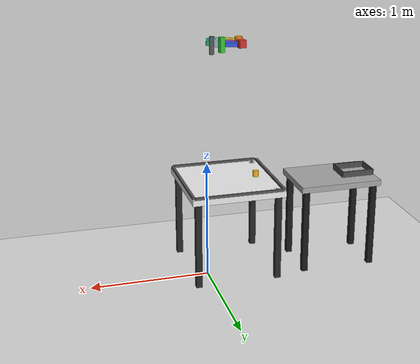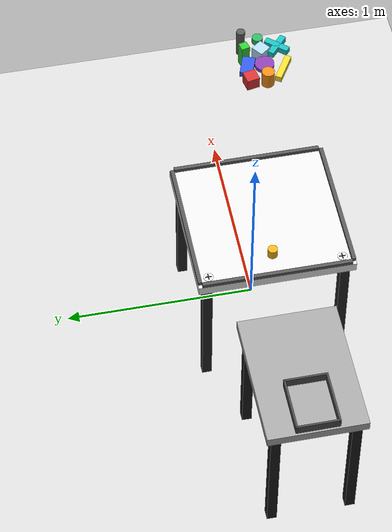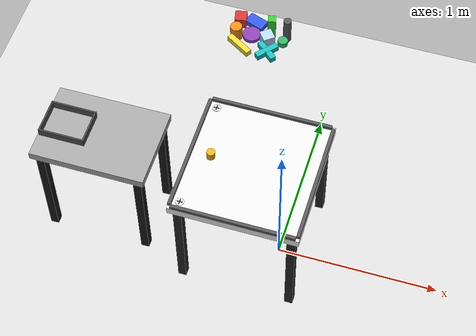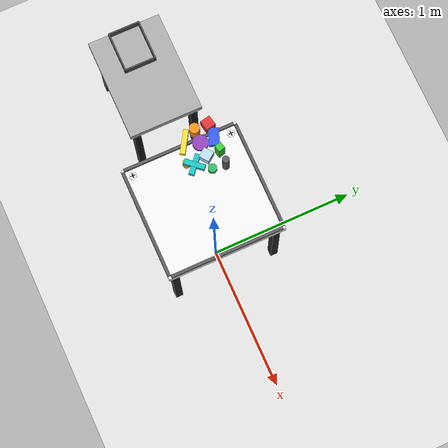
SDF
<sdf version="1.10">
 <world name="ur5_mesa_objetos">
  <plugin filename="gz-sim-physics-system" name="gz::sim::systems::Physics"/>
  <plugin filename="gz-sim-user-commands-system" name="gz::sim::systems::UserCommands"/>
  <plugin filename="gz-sim-scene-broadcaster-system" name="gz::sim::systems::SceneBroadcaster"/>
  <plugin filename="gz-sim-contact-system" name="gz::sim::systems::Contact"/>
  <plugin filename="gz-sim-sensors-system" name="gz::sim::systems::Sensors">
   <render_engine>ogre</render_engine>
  </plugin>
  <gravity>0 0 -9.81</gravity>
  <scene>
   <ambient>0.6 0.6 0.6 1</ambient>
   <background>0.95 0.95 0.95 1</background>
   <shadows>true</shadows>
  </scene>
  <physics name="ode_physics" type="ignored">
   <max_step_size>0.001</max_step_size>
   <real_time_update_rate>1000</real_time_update_rate>
   <dart><collision_detector>bullet</collision_detector></dart>
  </physics>
  <light name="sun_world" type="directional">
   <pose>0 0 10 0 0 0</pose>
   <diffuse>1 1 1 1</diffuse>
   <specular>0.1 0.1 0.1 1</specular>
   <direction>-0.5 0.5 -1</direction>
  </light>
  <model name="ground_plane">
   <static>true</static>
   <link name="link">
    <collision name="collision">
     <geometry><plane><normal>0 0 1</normal><size>100 100</size></plane></geometry>
    </collision>
    <visual name="visual">
     <geometry><plane><normal>0 0 1</normal><size>100 100</size></plane></geometry>
     <material><diffuse>0.85 0.85 0.85 1</diffuse></material>
    </visual>
   </link>
   <plugin filename="gz-sim-pose-publisher-system" name="gz::sim::systems::PosePublisher">
    <publish_pose>true</publish_pose>
    <publish_link_pose>true</publish_link_pose>
    <publish_visual_pose>false</publish_visual_pose>
    <publish_collision_pose>false</publish_collision_pose>
    <static_publisher>false</static_publisher>
   </plugin>
  </model>
  <model name="mesa_pro">
   <static>true</static>
   <pose>-0.17 0 0.075 0 0 0</pose>
   <link name="link">
    <collision name="tablero_collision">
     <pose>0 0 0.75 0 0 0</pose>
     <geometry><box><size>0.768 0.80 0.05</size></box></geometry>
     <surface><contact><collide_bitmask>0x01</collide_bitmask></contact></surface>
    </collision>
    <visual name="tablero_visual">
     <pose>0 0 0.75 0 0 0</pose>
     <geometry><box><size>0.768 0.80 0.05</size></box></geometry>
     <material><diffuse>0.92 0.92 0.92 1</diffuse></material>
    </visual>
    <collision name="wall_far_x_pos_c">
     <pose>0.374 0 0.785 0 0 0</pose>
     <geometry><box><size>0.02 0.76 0.02</size></box></geometry>
     <surface><contact><collide_bitmask>0x01</collide_bitmask></contact></surface>
    </collision>
    <visual name="wall_far_x_pos_v">
     <pose>0.374 0 0.785 0 0 0</pose>
     <geometry><box><size>0.02 0.76 0.02</size></box></geometry>
     <material><diffuse>0.35 0.35 0.35 1</diffuse></material>
    </visual>
    <collision name="wall_near_x_neg_c">
     <pose>-0.374 0 0.785 0 0 0</pose>
     <geometry><box><size>0.02 0.76 0.02</size></box></geometry>
     <surface><contact><collide_bitmask>0x01</collide_bitmask></contact></surface>
    </collision>
    <visual name="wall_near_x_neg_v">
     <pose>-0.374 0 0.785 0 0 0</pose>
     <geometry><box><size>0.02 0.76 0.02</size></box></geometry>
     <material><diffuse>0.35 0.35 0.35 1</diffuse></material>
    </visual>
    <collision name="wall_north_c">
     <pose>0 0.39 0.785 0 0 0</pose>
     <geometry><box><size>0.728 0.02 0.02</size></box></geometry>
     <surface><contact><collide_bitmask>0x01</collide_bitmask></contact></surface>
    </collision>
    <visual name="wall_north_v">
     <pose>0 0.39 0.785 0 0 0</pose>
     <geometry><box><size>0.728 0.02 0.02</size></box></geometry>
     <material><diffuse>0.35 0.35 0.35 1</diffuse></material>
    </visual>
    <collision name="wall_south_c">
     <pose>0 -0.39 0.785 0 0 0</pose>
     <geometry><box><size>0.728 0.02 0.02</size></box></geometry>
     <surface><contact><collide_bitmask>0x01</collide_bitmask></contact></surface>
    </collision>
    <visual name="wall_south_v">
     <pose>0 -0.39 0.785 0 0 0</pose>
     <geometry><box><size>0.728 0.02 0.02</size></box></geometry>
     <material><diffuse>0.35 0.35 0.35 1</diffuse></material>
    </visual>
    <visual name="test_marker_front_left_disk_v">
     <pose>-0.324 0.340 0.776 0 0 0</pose>
     <geometry><cylinder><radius>0.025</radius><length>0.003</length></cylinder></geometry>
     <material>
      <ambient>0.96 0.96 0.96 1</ambient>
      <diffuse>0.96 0.96 0.96 1</diffuse>
      <emissive>0.05 0.05 0.05 1</emissive>
     </material>
    </visual>
    <visual name="test_marker_front_left_cross_h_v">
     <pose>-0.324 0.340 0.778 0 0 0</pose>
     <geometry><box><size>0.034 0.005 0.002</size></box></geometry>
     <material><ambient>0.12 0.12 0.12 1</ambient><diffuse>0.12 0.12 0.12 1</diffuse></material>
    </visual>
    <visual name="test_marker_front_left_cross_v_v">
     <pose>-0.324 0.340 0.778 0 0 0</pose>
     <geometry><box><size>0.005 0.034 0.002</size></box></geometry>
     <material><ambient>0.12 0.12 0.12 1</ambient><diffuse>0.12 0.12 0.12 1</diffuse></material>
    </visual>
    <visual name="test_marker_front_right_disk_v">
     <pose>-0.324 -0.340 0.776 0 0 0</pose>
     <geometry><cylinder><radius>0.025</radius><length>0.003</length></cylinder></geometry>
     <material>
      <ambient>0.96 0.96 0.96 1</ambient>
      <diffuse>0.96 0.96 0.96 1</diffuse>
      <emissive>0.05 0.05 0.05 1</emissive>
     </material>
    </visual>
    <visual name="test_marker_front_right_cross_h_v">
     <pose>-0.324 -0.340 0.778 0 0 0</pose>
     <geometry><box><size>0.034 0.005 0.002</size></box></geometry>
     <material><ambient>0.12 0.12 0.12 1</ambient><diffuse>0.12 0.12 0.12 1</diffuse></material>
    </visual>
    <visual name="test_marker_front_right_cross_v_v">
     <pose>-0.324 -0.340 0.778 0 0 0</pose>
     <geometry><box><size>0.005 0.034 0.002</size></box></geometry>
     <material><ambient>0.12 0.12 0.12 1</ambient><diffuse>0.12 0.12 0.12 1</diffuse></material>
    </visual>
    <collision name="p1c">
     <pose>0.334  0.35 0.375 0 0 0</pose>
     <geometry><box><size>0.05 0.05 0.75</size></box></geometry>
     <surface><contact><collide_bitmask>0x01</collide_bitmask></contact></surface>
    </collision>
    <visual name="p1v">
     <pose>0.334  0.35 0.375 0 0 0</pose>
     <geometry><box><size>0.05 0.05 0.75</size></box></geometry>
     <material><diffuse>0.15 0.15 0.15 1</diffuse></material>
    </visual>
    <collision name="p2c">
     <pose>0.334 -0.35 0.375 0 0 0</pose>
     <geometry><box><size>0.05 0.05 0.75</size></box></geometry>
     <surface><contact><collide_bitmask>0x01</collide_bitmask></contact></surface>
    </collision>
    <visual name="p2v">
     <pose>0.334 -0.35 0.375 0 0 0</pose>
     <geometry><box><size>0.05 0.05 0.75</size></box></geometry>
     <material><diffuse>0.15 0.15 0.15 1</diffuse></material>
    </visual>
    <collision name="p3c">
     <pose>-0.334  0.35 0.375 0 0 0</pose>
     <geometry><box><size>0.05 0.05 0.75</size></box></geometry>
     <surface><contact><collide_bitmask>0x01</collide_bitmask></contact></surface>
    </collision>
    <visual name="p3v">
     <pose>-0.334  0.35 0.375 0 0 0</pose>
     <geometry><box><size>0.05 0.05 0.75</size></box></geometry>
     <material><diffuse>0.15 0.15 0.15 1</diffuse></material>
    </visual>
    <collision name="p4c">
     <pose>-0.334 -0.35 0.375 0 0 0</pose>
     <geometry><box><size>0.05 0.05 0.75</size></box></geometry>
     <surface><contact><collide_bitmask>0x01</collide_bitmask></contact></surface>
    </collision>
    <visual name="p4v">
     <pose>-0.334 -0.35 0.375 0 0 0</pose>
     <geometry><box><size>0.05 0.05 0.75</size></box></geometry>
     <material><diffuse>0.15 0.15 0.15 1</diffuse></material>
    </visual>
   </link>
  </model>
  <model name="pick_demo">
   <static>false</static>
   <pose>-0.42 0.00 0.876 0 0 0</pose>
   <link name="link">
    <inertial>
     <mass>0.08</mass>
     <inertia><ixx>0.0002</ixx><iyy>0.0002</iyy><izz>0.0002</izz><ixy>0</ixy><ixz>0</ixz><iyz>0</iyz></inertia>
    </inertial>
    <collision name="collision">
     <geometry><cylinder><radius>0.025</radius><length>0.05</length></cylinder></geometry>
     <surface>
      <friction><ode><mu>2.0</mu><mu2>2.0</mu2></ode></friction>
      <bounce><restitution_coefficient>0.0</restitution_coefficient><threshold>100000</threshold></bounce>
      <contact>
       <ode><kp>200000</kp><kd>50.0</kd><max_vel>0.1</max_vel><min_depth>0.001</min_depth></ode>
       <collide_bitmask>0x01</collide_bitmask>
      </contact>
     </surface>
    </collision>
    <visual name="visual">
     <geometry><cylinder><radius>0.025</radius><length>0.05</length></cylinder></geometry>
     <material><diffuse>0.95 0.70 0.10 1</diffuse></material>
    </visual>
   </link>
  </model>
  <model name="drop_anchor">
   <static>true</static>
   <link name="link">
    <inertial>
     <mass>0.1</mass>
     <inertia><ixx>0.0001</ixx><iyy>0.0001</iyy><izz>0.0001</izz><ixy>0</ixy><ixz>0</ixz><iyz>0</iyz></inertia>
    </inertial>
   </link>
   <plugin filename="gz-sim-detachable-joint-system" name="gz::sim::systems::DetachableJoint">
    <parent_link>link</parent_link>
    <child_model>box_red</child_model>
    <child_link>link</child_link>
    <attach_topic>/drop_anchor/box_red/attach</attach_topic>
    <detach_topic>/drop_anchor/box_red/detach</detach_topic>
    <output_topic>/drop_anchor/box_red/state</output_topic>
   </plugin>
   <plugin filename="gz-sim-detachable-joint-system" name="gz::sim::systems::DetachableJoint">
    <parent_link>link</parent_link>
    <child_model>box_blue</child_model>
    <child_link>link</child_link>
    <attach_topic>/drop_anchor/box_blue/attach</attach_topic>
    <detach_topic>/drop_anchor/box_blue/detach</detach_topic>
    <output_topic>/drop_anchor/box_blue/state</output_topic>
   </plugin>
   <plugin filename="gz-sim-detachable-joint-system" name="gz::sim::systems::DetachableJoint">
    <parent_link>link</parent_link>
    <child_model>box_green</child_model>
    <child_link>link</child_link>
    <attach_topic>/drop_anchor/box_green/attach</attach_topic>
    <detach_topic>/drop_anchor/box_green/detach</detach_topic>
    <output_topic>/drop_anchor/box_green/state</output_topic>
   </plugin>
   <plugin filename="gz-sim-detachable-joint-system" name="gz::sim::systems::DetachableJoint">
    <parent_link>link</parent_link>
    <child_model>box_lightblue</child_model>
    <child_link>link</child_link>
    <attach_topic>/drop_anchor/box_lightblue/attach</attach_topic>
    <detach_topic>/drop_anchor/box_lightblue/detach</detach_topic>
    <output_topic>/drop_anchor/box_lightblue/state</output_topic>
   </plugin>
   <plugin filename="gz-sim-detachable-joint-system" name="gz::sim::systems::DetachableJoint">
    <parent_link>link</parent_link>
    <child_model>box_yellow</child_model>
    <child_link>link</child_link>
    <attach_topic>/drop_anchor/box_yellow/attach</attach_topic>
    <detach_topic>/drop_anchor/box_yellow/detach</detach_topic>
    <output_topic>/drop_anchor/box_yellow/state</output_topic>
   </plugin>
   <plugin filename="gz-sim-detachable-joint-system" name="gz::sim::systems::DetachableJoint">
    <parent_link>link</parent_link>
    <child_model>cross_cyan</child_model>
    <child_link>link</child_link>
    <attach_topic>/drop_anchor/cross_cyan/attach</attach_topic>
    <detach_topic>/drop_anchor/cross_cyan/detach</detach_topic>
    <output_topic>/drop_anchor/cross_cyan/state</output_topic>
   </plugin>
   <plugin filename="gz-sim-detachable-joint-system" name="gz::sim::systems::DetachableJoint">
    <parent_link>link</parent_link>
    <child_model>cyl_gray</child_model>
    <child_link>link</child_link>
    <attach_topic>/drop_anchor/cyl_gray/attach</attach_topic>
    <detach_topic>/drop_anchor/cyl_gray/detach</detach_topic>
    <output_topic>/drop_anchor/cyl_gray/state</output_topic>
   </plugin>
   <plugin filename="gz-sim-detachable-joint-system" name="gz::sim::systems::DetachableJoint">
    <parent_link>link</parent_link>
    <child_model>cyl_green</child_model>
    <child_link>link</child_link>
    <attach_topic>/drop_anchor/cyl_green/attach</attach_topic>
    <detach_topic>/drop_anchor/cyl_green/detach</detach_topic>
    <output_topic>/drop_anchor/cyl_green/state</output_topic>
   </plugin>
   <plugin filename="gz-sim-detachable-joint-system" name="gz::sim::systems::DetachableJoint">
    <parent_link>link</parent_link>
    <child_model>cyl_orange</child_model>
    <child_link>link</child_link>
    <attach_topic>/drop_anchor/cyl_orange/attach</attach_topic>
    <detach_topic>/drop_anchor/cyl_orange/detach</detach_topic>
    <output_topic>/drop_anchor/cyl_orange/state</output_topic>
   </plugin>
   <plugin filename="gz-sim-detachable-joint-system" name="gz::sim::systems::DetachableJoint">
    <parent_link>link</parent_link>
    <child_model>cyl_purple</child_model>
    <child_link>link</child_link>
    <attach_topic>/drop_anchor/cyl_purple/attach</attach_topic>
    <detach_topic>/drop_anchor/cyl_purple/detach</detach_topic>
    <output_topic>/drop_anchor/cyl_purple/state</output_topic>
   </plugin>
  </model>
  <model name="mesa_robot">
   <static>true</static>
   <pose>-1.10 0.00 0.025 0 0 0</pose>
   <link name="link">
    <collision name="tablero_collision">
     <pose>0 0 0.75 0 0 0</pose>
     <geometry><box><size>0.70 0.50 0.05</size></box></geometry>
     <surface><contact><collide_bitmask>0x01</collide_bitmask></contact></surface>
    </collision>
    <visual name="tablero_visual">
     <pose>0 0 0.75 0 0 0</pose>
     <geometry><box><size>0.70 0.50 0.05</size></box></geometry>
     <material><diffuse>0.65 0.65 0.65 1</diffuse></material>
    </visual>
    <collision name="p1">
     <pose>0.30  0.20 0.375 0 0 0</pose>
     <geometry><box><size>0.05 0.05 0.75</size></box></geometry>
     <surface><contact><collide_bitmask>0x01</collide_bitmask></contact></surface>
    </collision>
    <visual name="p1v">
     <pose>0.30  0.20 0.375 0 0 0</pose>
     <geometry><box><size>0.05 0.05 0.75</size></box></geometry>
     <material><diffuse>0.10 0.10 0.10 1</diffuse></material>
    </visual>
    <collision name="p2">
     <pose>0.30 -0.20 0.375 0 0 0</pose>
     <geometry><box><size>0.05 0.05 0.75</size></box></geometry>
     <surface><contact><collide_bitmask>0x01</collide_bitmask></contact></surface>
    </collision>
    <visual name="p2v">
     <pose>0.30 -0.20 0.375 0 0 0</pose>
     <geometry><box><size>0.05 0.05 0.75</size></box></geometry>
     <material><diffuse>0.10 0.10 0.10 1</diffuse></material>
    </visual>
    <collision name="p3">
     <pose>-0.30  0.20 0.375 0 0 0</pose>
     <geometry><box><size>0.05 0.05 0.75</size></box></geometry>
     <surface><contact><collide_bitmask>0x01</collide_bitmask></contact></surface>
    </collision>
    <visual name="p3v">
     <pose>-0.30  0.20 0.375 0 0 0</pose>
     <geometry><box><size>0.05 0.05 0.75</size></box></geometry>
     <material><diffuse>0.10 0.10 0.10 1</diffuse></material>
    </visual>
    <collision name="p4">
     <pose>-0.30 -0.20 0.375 0 0 0</pose>
     <geometry><box><size>0.05 0.05 0.75</size></box></geometry>
     <surface><contact><collide_bitmask>0x01</collide_bitmask></contact></surface>
    </collision>
    <visual name="p4v">
     <pose>-0.30 -0.20 0.375 0 0 0</pose>
     <geometry><box><size>0.05 0.05 0.75</size></box></geometry>
     <material><diffuse>0.10 0.10 0.10 1</diffuse></material>
    </visual>
   </link>
  </model>
  <model name="bandeja_deposito">
   <static>true</static>
   <pose>-1.30 0.00 0.780 0 0 0</pose>
   <link name="link">
    <collision name="base_c"><geometry><box><size>0.28 0.22 0.01</size></box></geometry></collision>
    <visual name="base_v">
     <geometry><box><size>0.28 0.22 0.01</size></box></geometry>
     <material><diffuse>0.95 0.85 0.20 1</diffuse></material>
    </visual>
    <collision name="wall_n_c">
     <pose>0 0.105 0.035 0 0 0</pose>
     <geometry><box><size>0.28 0.01 0.07</size></box></geometry>
    </collision>
    <visual name="wall_n_v">
     <pose>0 0.105 0.035 0 0 0</pose>
     <geometry><box><size>0.28 0.01 0.07</size></box></geometry>
     <material><diffuse>0.30 0.30 0.30 1</diffuse></material>
    </visual>
    <collision name="wall_s_c">
     <pose>0 -0.105 0.035 0 0 0</pose>
     <geometry><box><size>0.28 0.01 0.07</size></box></geometry>
    </collision>
    <visual name="wall_s_v">
     <pose>0 -0.105 0.035 0 0 0</pose>
     <geometry><box><size>0.28 0.01 0.07</size></box></geometry>
     <material><diffuse>0.30 0.30 0.30 1</diffuse></material>
    </visual>
    <collision name="wall_e_c">
     <pose>0.135 0 0.035 0 0 0</pose>
     <geometry><box><size>0.01 0.22 0.07</size></box></geometry>
    </collision>
    <visual name="wall_e_v">
     <pose>0.135 0 0.035 0 0 0</pose>
     <geometry><box><size>0.01 0.22 0.07</size></box></geometry>
     <material><diffuse>0.30 0.30 0.30 1</diffuse></material>
    </visual>
    <collision name="wall_w_c">
     <pose>-0.135 0 0.035 0 0 0</pose>
     <geometry><box><size>0.01 0.22 0.07</size></box></geometry>
    </collision>
    <visual name="wall_w_v">
     <pose>-0.135 0 0.035 0 0 0</pose>
     <geometry><box><size>0.01 0.22 0.07</size></box></geometry>
     <material><diffuse>0.30 0.30 0.30 1</diffuse></material>
    </visual>
   </link>
  </model>
  <joint name="ur5_rg2_fixed_to_world" type="fixed">
   <parent>world</parent>
   <pose>-0.85 0.00 0.850 0 0 0</pose>
   <child>ur5_rg2::base_link</child>
  </joint>
  <model name="camera_overhead">
   <static>true</static>
   <pose>-0.85 0.00 1.85 0 1.02 0</pose>
   <link name="link">
    <sensor name="camera_overhead_rgb" type="camera">
     <always_on>true</always_on>
     <update_rate>30</update_rate>
     <topic>/camera_overhead/image</topic>
     <camera>
      <horizontal_fov>0.75</horizontal_fov>
      <image><width>320</width><height>240</height><format>R8G8B8</format></image>
      <clip><near>0.05</near><far>10.0</far></clip>
     </camera>
    </sensor>
    <sensor name="camera_overhead_depth" type="depth_camera">
     <always_on>true</always_on>
     <update_rate>30</update_rate>
     <topic>/camera_overhead/depth_image</topic>
     <camera>
      <horizontal_fov>0.75</horizontal_fov>
      <image><width>320</width><height>240</height><format>R8G8B8</format></image>
      <clip><near>0.05</near><far>10.0</far></clip>
     </camera>
    </sensor>
   </link>
  </model>
  <model name="camera_debug_top">
   <static>true</static>
   <pose>-0.60 0.00 2.55 0 1.5708 0</pose>
   <link name="link">
    <sensor name="camera_debug_top_rgb" type="camera">
     <always_on>true</always_on>
     <update_rate>30</update_rate>
     <topic>/camera_debug_top/image</topic>
     <camera>
      <horizontal_fov>1.2</horizontal_fov>
      <image><width>640</width><height>480</height><format>R8G8B8</format></image>
      <clip><near>0.05</near><far>10.0</far></clip>
     </camera>
    </sensor>
    <sensor name="camera_debug_top_depth" type="depth_camera">
     <always_on>true</always_on>
     <update_rate>30</update_rate>
     <topic>/camera_debug_top/depth_image</topic>
     <camera>
      <horizontal_fov>1.2</horizontal_fov>
      <image><width>640</width><height>480</height><format>R8G8B8</format></image>
      <clip><near>0.05</near><far>10.0</far></clip>
     </camera>
    </sensor>
   </link>
  </model>
  <model name="camera_north">
   <static>true</static>
   <pose>-0.95 0.75 0 0 0 0</pose>
   <link name="link">
    <sensor name="camera_north_rgbd" type="rgbd_camera">
     <pose>0 0 2.90 0 1.05 -0.668</pose>
     <always_on>true</always_on>
     <update_rate>30</update_rate>
     <topic>/camera_north</topic>
     <camera>
      <horizontal_fov>1.047</horizontal_fov>
      <image><width>320</width><height>240</height><format>R8G8B8</format></image>
      <clip><near>0.05</near><far>10.0</far></clip>
     </camera>
    </sensor>
   </link>
  </model>
  <model name="camera_east">
   <static>true</static>
   <pose>0.45 0.75 0 0 0 0</pose>
   <link name="link">
    <sensor name="camera_east_rgbd" type="rgbd_camera">
     <pose>0 0 1.90 0 1.05 -2.475</pose>
     <always_on>true</always_on>
     <update_rate>60</update_rate>
     <topic>/camera_east</topic>
     <camera>
      <horizontal_fov>1.047</horizontal_fov>
      <image><width>320</width><height>240</height><format>R8G8B8</format></image>
      <clip><near>0.05</near><far>10.0</far></clip>
     </camera>
    </sensor>
   </link>
  </model>
  <model name="camera_south">
   <static>true</static>
   <pose>-2.00 0.00 0 0 0 0</pose>
   <link name="link">
    <sensor name="camera_south_rgbd" type="camera">
     <pose>0 0 2.10 0 0.75 0</pose>
     <always_on>true</always_on>
     <update_rate>60</update_rate>
     <topic>/camera_south/image</topic>
     <camera>
      <horizontal_fov>1.047</horizontal_fov>
      <image><width>320</width><height>240</height><format>R8G8B8</format></image>
      <clip><near>0.05</near><far>10.0</far></clip>
     </camera>
    </sensor>
   </link>
  </model>
  <model name="camera_west">
   <static>true</static>
   <pose>0.30 0.00 0 0 0 0</pose>
   <link name="link">
    <sensor name="camera_west_rgbd" type="camera">
     <pose>0 0 2.00 0 0.85 3.1416</pose>
     <always_on>true</always_on>
     <update_rate>60</update_rate>
     <topic>/camera_west/image</topic>
     <camera>
      <horizontal_fov>1.047</horizontal_fov>
      <image><width>320</width><height>240</height><format>R8G8B8</format></image>
      <clip><near>0.05</near><far>10.0</far></clip>
     </camera>
    </sensor>
   </link>
  </model>
  <model name="box_red">
   <static>false</static>
   <pose>-0.260 0.100 2.000 0 0 0.20</pose>
   <link name="link">
    <inertial>
     <mass>0.12</mass>
     <inertia>
      <ixx>7.199999999999999e-05</ixx>
      <iyy>7.199999999999999e-05</iyy>
      <izz>7.199999999999999e-05</izz>
      <ixy>0</ixy>
      <ixz>0</ixz>
      <iyz>0</iyz>
     </inertia>
    </inertial>
    <collision name="c">
     <geometry><box><size>0.06 0.06 0.06</size></box></geometry>
     <surface>
      <friction><ode><mu>1.0</mu><mu2>1.0</mu2></ode></friction>
      <contact><ode><kp>200000</kp><kd>50.0</kd></ode></contact>
     </surface>
    </collision>
    <visual name="v">
     <geometry><box><size>0.06 0.06 0.06</size></box></geometry>
     <material><diffuse>0.85 0.20 0.20 1</diffuse></material>
    </visual>
   </link>
  </model>
  <model name="box_blue">
   <static>false</static>
   <pose>-0.180 0.100 2.000 0 0 -0.35</pose>
   <link name="link">
    <inertial>
     <mass>0.1</mass>
     <inertia>
      <ixx>3.75e-05</ixx>
      <iyy>9.083333333333335e-05</iyy>
      <izz>0.00011333333333333334</izz>
      <ixy>0</ixy>
      <ixz>0</ixz>
      <iyz>0</iyz>
     </inertia>
    </inertial>
    <collision name="c">
     <geometry><box><size>0.1 0.06 0.03</size></box></geometry>
     <surface>
      <friction><ode><mu>1.0</mu><mu2>1.0</mu2></ode></friction>
      <contact><ode><kp>200000</kp><kd>50.0</kd></ode></contact>
     </surface>
    </collision>
    <visual name="v">
     <geometry><box><size>0.1 0.06 0.03</size></box></geometry>
     <material><diffuse>0.20 0.35 0.90 1</diffuse></material>
    </visual>
   </link>
  </model>
  <model name="box_green">
   <static>false</static>
   <pose>-0.100 0.100 2.000 0 0 0.25</pose>
   <link name="link">
    <inertial>
     <mass>0.11</mass>
     <inertia>
      <ixx>0.00014666666666666666</ixx>
      <iyy>0.00014666666666666666</iyy>
      <izz>2.9333333333333336e-05</izz>
      <ixy>0</ixy>
      <ixz>0</ixz>
      <iyz>0</iyz>
     </inertia>
    </inertial>
    <collision name="c">
     <geometry><box><size>0.04 0.04 0.12</size></box></geometry>
     <surface>
      <friction><ode><mu>1.0</mu><mu2>1.0</mu2></ode></friction>
      <contact><ode><kp>200000</kp><kd>50.0</kd></ode></contact>
     </surface>
    </collision>
    <visual name="v">
     <geometry><box><size>0.04 0.04 0.12</size></box></geometry>
     <material><diffuse>0.20 0.80 0.20 1</diffuse></material>
    </visual>
   </link>
  </model>
  <model name="cyl_gray">
   <static>false</static>
   <pose>-0.020 0.100 2.000 0 0 0</pose>
   <link name="link">
    <inertial>
     <mass>0.1</mass>
     <inertia>
      <ixx>0.00017333333333333336</ixx>
      <iyy>0.00017333333333333336</iyy>
      <izz>2e-05</izz>
      <ixy>0</ixy>
      <ixz>0</ixz>
      <iyz>0</iyz>
     </inertia>
    </inertial>
    <collision name="c">
     <geometry><cylinder><radius>0.02</radius><length>0.14</length></cylinder></geometry>
     <surface>
      <friction><ode><mu>1.0</mu><mu2>1.0</mu2></ode></friction>
      <contact><ode><kp>200000</kp><kd>50.0</kd></ode></contact>
     </surface>
    </collision>
    <visual name="v">
     <geometry><cylinder><radius>0.02</radius><length>0.14</length></cylinder></geometry>
     <material><diffuse>0.35 0.35 0.35 1</diffuse></material>
    </visual>
   </link>
  </model>
  <model name="cyl_orange">
   <static>false</static>
   <pose>-0.260 0.020 2.000 0 0 0.40</pose>
   <link name="link">
    <inertial>
     <mass>0.09</mass>
     <inertia>
      <ixx>6.825e-05</ixx>
      <iyy>6.825e-05</iyy>
      <izz>4.0499999999999995e-05</izz>
      <ixy>0</ixy>
      <ixz>0</ixz>
      <iyz>0</iyz>
     </inertia>
    </inertial>
    <collision name="c">
     <geometry><cylinder><radius>0.03</radius><length>0.08</length></cylinder></geometry>
     <surface>
      <friction><ode><mu>1.0</mu><mu2>1.0</mu2></ode></friction>
      <contact><ode><kp>200000</kp><kd>50.0</kd></ode></contact>
     </surface>
    </collision>
    <visual name="v">
     <geometry><cylinder><radius>0.03</radius><length>0.08</length></cylinder></geometry>
     <material><diffuse>0.95 0.55 0.10 1</diffuse></material>
    </visual>
   </link>
  </model>
  <model name="cyl_purple">
   <static>false</static>
   <pose>-0.180 0.020 2.000 0 0 -0.10</pose>
   <link name="link">
    <inertial>
     <mass>0.08</mass>
     <inertia>
      <ixx>4.316666666666667e-05</ixx>
      <iyy>4.316666666666667e-05</iyy>
      <izz>8.099999999999999e-05</izz>
      <ixy>0</ixy>
      <ixz>0</ixz>
      <iyz>0</iyz>
     </inertia>
    </inertial>
    <collision name="c">
     <geometry><cylinder><radius>0.045</radius><length>0.02</length></cylinder></geometry>
     <surface>
      <friction><ode><mu>1.0</mu><mu2>1.0</mu2></ode></friction>
      <contact><ode><kp>200000</kp><kd>50.0</kd></ode></contact>
     </surface>
    </collision>
    <visual name="v">
     <geometry><cylinder><radius>0.045</radius><length>0.02</length></cylinder></geometry>
     <material><diffuse>0.55 0.25 0.70 1</diffuse></material>
    </visual>
   </link>
  </model>
  <model name="box_lightblue">
   <static>false</static>
   <pose>-0.100 0.020 2.000 0 0 0.65</pose>
   <link name="link">
    <inertial>
     <mass>0.09</mass>
     <inertia><ixx>5.4e-05</ixx><iyy>5.4e-05</iyy><izz>5.4e-05</izz><ixy>0</ixy><ixz>0</ixz><iyz>0</iyz></inertia>
    </inertial>
    <collision name="c">
     <geometry><box><size>0.06 0.06 0.06</size></box></geometry>
     <surface>
      <friction><ode><mu>1.0</mu><mu2>1.0</mu2></ode></friction>
      <contact><ode><kp>200000</kp><kd>50.0</kd></ode></contact>
     </surface>
    </collision>
    <visual name="v">
     <geometry><box><size>0.06 0.06 0.06</size></box></geometry>
     <material><diffuse>0.70 0.85 0.95 1</diffuse></material>
    </visual>
   </link>
  </model>
  <model name="cyl_green">
   <static>false</static>
   <pose>-0.020 0.020 2.000 0 0 0</pose>
   <link name="link">
    <inertial>
     <mass>0.05</mass>
     <inertia>
      <ixx>1.16e-05</ixx>
      <iyy>1.16e-05</iyy>
      <izz>1.56e-05</izz>
      <ixy>0</ixy>
      <ixz>0</ixz>
      <iyz>0</iyz>
     </inertia>
    </inertial>
    <collision name="c">
     <geometry><cylinder><radius>0.025</radius><length>0.03</length></cylinder></geometry>
     <surface>
      <friction><ode><mu>1.0</mu><mu2>1.0</mu2></ode></friction>
      <contact><ode><kp>200000</kp><kd>50.0</kd></ode></contact>
     </surface>
    </collision>
    <visual name="v">
     <geometry><cylinder><radius>0.025</radius><length>0.03</length></cylinder></geometry>
     <material><diffuse>0.20 0.70 0.40 1</diffuse></material>
    </visual>
   </link>
  </model>
  <model name="box_yellow">
   <static>false</static>
   <pose>-0.220 -0.060 2.000 0 0 -0.55</pose>
   <link name="link">
    <inertial>
     <mass>0.1</mass>
     <inertia>
      <ixx>1.4999999999999999e-05</ixx>
      <iyy>0.00017083333333333336</iyy>
      <izz>0.00017083333333333336</izz>
      <ixy>0</ixy>
      <ixz>0</ixz>
      <iyz>0</iyz>
     </inertia>
    </inertial>
    <collision name="c">
     <geometry><box><size>0.14 0.03 0.03</size></box></geometry>
     <surface>
      <friction><ode><mu>1.0</mu><mu2>1.0</mu2></ode></friction>
      <contact><ode><kp>200000</kp><kd>50.0</kd></ode></contact>
     </surface>
    </collision>
    <visual name="v">
     <geometry><box><size>0.14 0.03 0.03</size></box></geometry>
     <material><diffuse>0.95 0.85 0.20 1</diffuse></material>
    </visual>
   </link>
  </model>
  <model name="cross_cyan">
   <static>false</static>
   <pose>-0.080 -0.060 2.000 0 0 0.85</pose>
   <link name="link">
    <inertial>
     <mass>0.07</mass>
     <inertia>
      <ixx>8.925e-05</ixx>
      <iyy>8.925e-05</iyy>
      <izz>0.000168</izz>
      <ixy>0</ixy>
      <ixz>0</ixz>
      <iyz>0</iyz>
     </inertia>
    </inertial>
    <collision name="c1">
     <geometry><box><size>0.12 0.03 0.03</size></box></geometry>
     <surface>
      <friction><ode><mu>1.0</mu><mu2>1.0</mu2></ode></friction>
      <contact><ode><kp>200000</kp><kd>50.0</kd></ode></contact>
     </surface>
    </collision>
    <visual name="v1">
     <geometry><box><size>0.12 0.03 0.03</size></box></geometry>
     <material><diffuse>0.10 0.75 0.75 1</diffuse></material>
    </visual>
   </link>
   <link name="link_b">
    <inertial>
     <mass>0.07</mass>
     <inertia>
      <ixx>8.925e-05</ixx>
      <iyy>8.925e-05</iyy>
      <izz>0.000168</izz>
      <ixy>0</ixy>
      <ixz>0</ixz>
      <iyz>0</iyz>
     </inertia>
    </inertial>
    <collision name="c2">
     <geometry><box><size>0.03 0.12 0.03</size></box></geometry>
     <surface>
      <friction><ode><mu>1.0</mu><mu2>1.0</mu2></ode></friction>
      <contact><ode><kp>200000</kp><kd>50.0</kd></ode></contact>
     </surface>
    </collision>
    <visual name="v2">
     <geometry><box><size>0.03 0.12 0.03</size></box></geometry>
     <material><diffuse>0.10 0.75 0.75 1</diffuse></material>
    </visual>
   </link>
   <joint name="fixed_joint" type="fixed"><parent>link</parent><child>link_b</child></joint>
  </model>
 </world>
</sdf>
